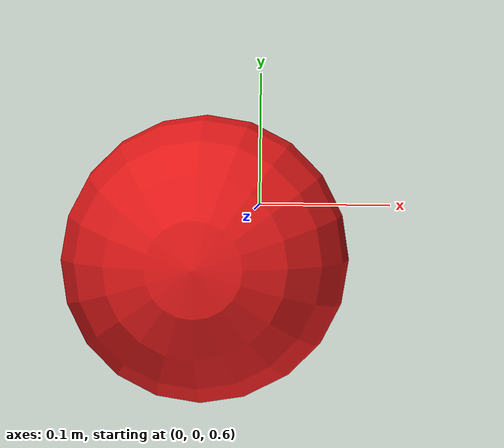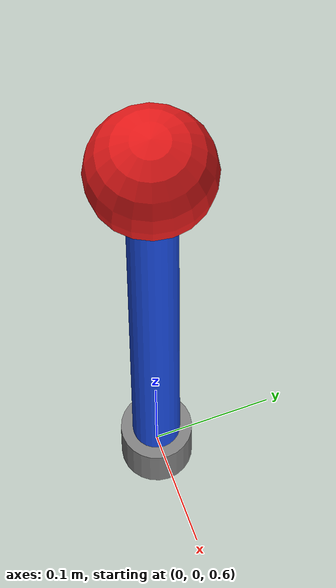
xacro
<?xml version="1.0"?>
<robot name="single_pendulum" xmlns:xacro="http://www.ros.org/wiki/xacro">

  <xacro:property name="rod_length" value="0.5"/>
  <xacro:property name="rod_radius" value="0.02"/>
  <xacro:property name="bob_radius" value="0.05"/>

  <link name="world"/>

  <link name="base_link">
    <visual>
      <geometry><cylinder radius="0.03" length="0.05"/></geometry>
      <material name="grey"><color rgba="0.5 0.5 0.5 1"/></material>
    </visual>
  </link>

  <joint name="world_to_base" type="fixed">
    <parent link="world"/>
    <child link="base_link"/>
    <origin xyz="0 0 0.6" rpy="0 0 0"/>
  </joint>

  <link name="rod_link">
    <visual>
      <origin xyz="0 0 ${rod_length/2}" rpy="0 0 0"/>
      <geometry><cylinder radius="${rod_radius}" length="${rod_length}"/></geometry>
      <material name="blue"><color rgba="0.1 0.3 0.9 1"/></material>
    </visual>
  </link>

  <joint name="pivot_joint" type="revolute">
    <parent link="base_link"/>
    <child link="rod_link"/>
    <origin xyz="0 0 0" rpy="0 0 0"/>
    <axis xyz="0 1 0"/>
    <limit lower="-6.283" upper="6.283" effort="10" velocity="20"/>
  </joint>

  <link name="bob_link">
    <visual>
      <geometry><sphere radius="${bob_radius}"/></geometry>
      <material name="red"><color rgba="0.9 0.1 0.1 1"/></material>
    </visual>
  </link>

  <joint name="rod_to_bob" type="fixed">
    <parent link="rod_link"/>
    <child link="bob_link"/>
    <origin xyz="0 0 ${rod_length}" rpy="0 0 0"/>
  </joint>

</robot>
